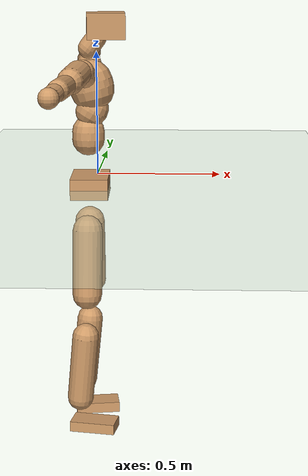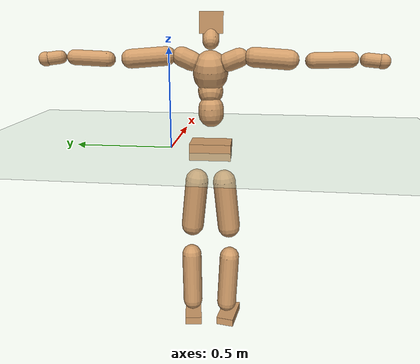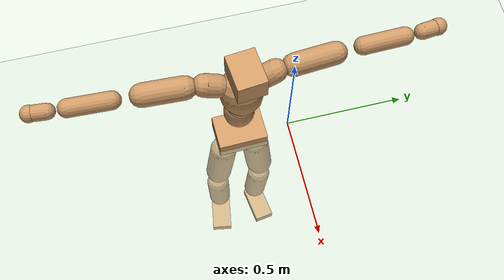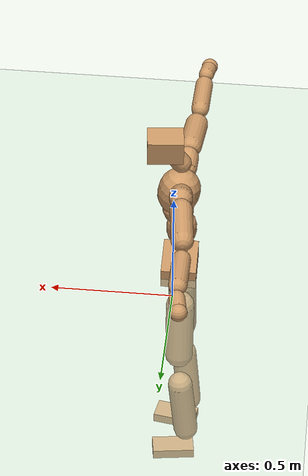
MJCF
<mujoco model="humanoid">
  <compiler coordinate="local" angle="radian"/>
  <default>
    <joint damping="0.0" armature="0.01" stiffness="0.0" limited="true"/>
    <geom conaffinity="1" condim="3" contype="7" margin="0.001" rgba="0.8 0.6 .4 1"/>
  </default>
  <asset>
    <texture type="skybox" builtin="gradient" rgb1=".4 .5 .6" rgb2="0 0 0" width="100" height="100"/>
    <texture builtin="flat" height="1278" mark="cross" markrgb="1 1 1" name="texgeom" random="0.01" rgb1="0.8 0.6 0.4" rgb2="0.8 0.6 0.4" type="cube" width="127"/>
    <texture builtin="checker" height="100" name="texplane" rgb1="0 0 0" rgb2="0.8 0.8 0.8" type="2d" width="100"/>
    <material name="MatPlane" reflectance="0.5" shininess="1" specular="1" texrepeat="60 60" texture="texplane"/>
    <material name="geom" texture="texgeom" texuniform="true"/>
  </asset>
  <worldbody>
    <light cutoff="100" diffuse="1 1 1" dir="-0 0 -1.3" directional="true" exponent="1" pos="0 0 1.3" specular=".1 .1 .1"/>
    <geom conaffinity="1" condim="3" name="floor" pos="0 0 0" rgba="0.8 0.9 0.8 1" size="100 100 .2" type="plane" material="MatPlane"/>
    <body name="Pelvis" pos="-0.0041 -0.2081 0.0128">
      <freejoint name="Pelvis"/>
      <geom type="box" contype="1" conaffinity="1" density="500" pos="-0.0076 -0.0002 -0.0132" size="0.0728 0.1033 0.0408" quat="0.9999 0.0000 0.0000 0.0129" name="Pelvis"/>
      <body name="L_Hip" pos="-0.0187 0.0636 -0.0948">
        <joint name="L_Hip_x" type="hinge" pos="0 0 0" axis="1 0 0" stiffness="800" damping="80" armature="0.02" range="-180.0000 180.0000"/>
        <joint name="L_Hip_y" type="hinge" pos="0 0 0" axis="0 1 0" stiffness="800" damping="80" armature="0.02" range="-180.0000 180.0000"/>
        <joint name="L_Hip_z" type="hinge" pos="0 0 0" axis="0 0 1" stiffness="800" damping="80" armature="0.02" range="-180.0000 180.0000"/>
        <geom type="capsule" contype="1" conaffinity="1" density="500" fromto="0.0000 0.0082 -0.0841 0.0001 0.0329 -0.3363" size="0.059" name="L_Hip"/>
        <body name="L_Knee" pos="0.0002 0.0412 -0.4204">
          <joint name="L_Knee_x" type="hinge" pos="0 0 0" axis="1 0 0" stiffness="800" damping="80" armature="0.02" range="-180.0000 180.0000"/>
          <joint name="L_Knee_y" type="hinge" pos="0 0 0" axis="0 1 0" stiffness="800" damping="80" armature="0.02" range="-180.0000 180.0000"/>
          <joint name="L_Knee_z" type="hinge" pos="0 0 0" axis="0 0 1" stiffness="800" damping="80" armature="0.02" range="-180.0000 180.0000"/>
          <geom type="capsule" contype="1" conaffinity="1" density="500" fromto="-0.0091 -0.0028 -0.0892 -0.0363 -0.0111 -0.3570" size="0.0522" name="L_Knee"/>
          <body name="L_Ankle" pos="-0.0453 -0.0139 -0.4462">
            <joint name="L_Ankle_x" type="hinge" pos="0 0 0" axis="1 0 0" stiffness="800" damping="80" armature="0.02" range="-180.0000 180.0000"/>
            <joint name="L_Ankle_y" type="hinge" pos="0 0 0" axis="0 1 0" stiffness="800" damping="80" armature="0.02" range="-180.0000 180.0000"/>
            <joint name="L_Ankle_z" type="hinge" pos="0 0 0" axis="0 0 1" stiffness="800" damping="80" armature="0.02" range="-180.0000 180.0000"/>
            <geom type="box" contype="1" conaffinity="1" density="500" pos="0.0624 0.0094 -0.0303" size="0.0889 0.0445 0.0216" quat="0.9972 0.0000 0.0000 0.0746" name="L_Ankle"/>
            <body name="L_Toe" pos="0.1249 0.0188 -0.0607">
              <joint name="L_Toe_x" type="hinge" pos="0 0 0" axis="1 0 0" stiffness="500" damping="50" armature="0.02" range="-180.0000 180.0000"/>
              <joint name="L_Toe_y" type="hinge" pos="0 0 0" axis="0 1 0" stiffness="500" damping="50" armature="0.02" range="-180.0000 180.0000"/>
              <joint name="L_Toe_z" type="hinge" pos="0 0 0" axis="0 0 1" stiffness="500" damping="50" armature="0.02" range="-180.0000 180.0000"/>
              <geom type="box" contype="1" conaffinity="1" density="500" pos="0.0000 0.0000 0.0294" size="0.0009 0.0022 0.001" quat="0.9967 0.0000 0.0000 0.0811" name="L_Toe"/>
            </body>
          </body>
        </body>
      </body>
      <body name="R_Hip" pos="-0.014 -0.0609 -0.0939">
        <joint name="R_Hip_x" type="hinge" pos="0 0 0" axis="1 0 0" stiffness="800" damping="80" armature="0.02" range="-180.0000 180.0000"/>
        <joint name="R_Hip_y" type="hinge" pos="0 0 0" axis="0 1 0" stiffness="800" damping="80" armature="0.02" range="-180.0000 180.0000"/>
        <joint name="R_Hip_z" type="hinge" pos="0 0 0" axis="0 0 1" stiffness="800" damping="80" armature="0.02" range="-180.0000 180.0000"/>
        <geom type="capsule" contype="1" conaffinity="1" density="500" fromto="-0.0008 -0.0094 -0.0852 -0.0034 -0.0375 -0.3407" size="0.0581" name="R_Hip"/>
        <body name="R_Knee" pos="-0.0042 -0.0469 -0.4259">
          <joint name="R_Knee_x" type="hinge" pos="0 0 0" axis="1 0 0" stiffness="800" damping="80" armature="0.02" range="-180.0000 180.0000"/>
          <joint name="R_Knee_y" type="hinge" pos="0 0 0" axis="0 1 0" stiffness="800" damping="80" armature="0.02" range="-180.0000 180.0000"/>
          <joint name="R_Knee_z" type="hinge" pos="0 0 0" axis="0 0 1" stiffness="800" damping="80" armature="0.02" range="-180.0000 180.0000"/>
          <geom type="capsule" contype="1" conaffinity="1" density="500" fromto="-0.0085 0.0033 -0.0884 -0.0338 0.0134 -0.3536" size="0.0522" name="R_Knee"/>
          <body name="R_Ankle" pos="-0.0423 0.0167 -0.442">
            <joint name="R_Ankle_x" type="hinge" pos="0 0 0" axis="1 0 0" stiffness="800" damping="80" armature="0.02" range="-180.0000 180.0000"/>
            <joint name="R_Ankle_y" type="hinge" pos="0 0 0" axis="0 1 0" stiffness="800" damping="80" armature="0.02" range="-180.0000 180.0000"/>
            <joint name="R_Ankle_z" type="hinge" pos="0 0 0" axis="0 0 1" stiffness="800" damping="80" armature="0.02" range="-180.0000 180.0000"/>
            <geom type="box" contype="1" conaffinity="1" density="500" pos="0.0638 -0.0105 -0.0256" size="0.0905 0.0468 0.0208" quat="0.9967 0.0000 0.0000 -0.0816" name="R_Ankle"/>
            <body name="R_Toe" pos="0.1276 -0.021 -0.0511">
              <joint name="R_Toe_x" type="hinge" pos="0 0 0" axis="1 0 0" stiffness="500" damping="50" armature="0.02" range="-180.0000 180.0000"/>
              <joint name="R_Toe_y" type="hinge" pos="0 0 0" axis="0 1 0" stiffness="500" damping="50" armature="0.02" range="-180.0000 180.0000"/>
              <joint name="R_Toe_z" type="hinge" pos="0 0 0" axis="0 0 1" stiffness="500" damping="50" armature="0.02" range="-180.0000 180.0000"/>
              <geom type="box" contype="1" conaffinity="1" density="500" pos="0.0000 0.0000 0.0284" size="0.0008 0.0023 0.0012" quat="0.9973 0.0000 0.0000 -0.0729" name="R_Toe"/>
            </body>
          </body>
        </body>
      </body>
      <body name="Torso" pos="-0.0132 -0.0039 0.1095">
        <joint name="Torso_x" type="hinge" pos="0 0 0" axis="1 0 0" stiffness="1000" damping="100" armature="0.02" range="-180.0000 180.0000"/>
        <joint name="Torso_y" type="hinge" pos="0 0 0" axis="0 1 0" stiffness="1000" damping="100" armature="0.02" range="-180.0000 180.0000"/>
        <joint name="Torso_z" type="hinge" pos="0 0 0" axis="0 0 1" stiffness="1000" damping="100" armature="0.02" range="-180.0000 180.0000"/>
        <geom type="capsule" contype="1" conaffinity="1" density="500" fromto="0.0011 0.0033 0.0879 0.0007 0.0022 0.0586" size="0.0628" name="Torso"/>
        <body name="Spine" pos="0.0018 0.0055 0.1465">
          <joint name="Spine_x" type="hinge" pos="0 0 0" axis="1 0 0" stiffness="1000" damping="100" armature="0.02" range="-180.0000 180.0000"/>
          <joint name="Spine_y" type="hinge" pos="0 0 0" axis="0 1 0" stiffness="1000" damping="100" armature="0.02" range="-180.0000 180.0000"/>
          <joint name="Spine_z" type="hinge" pos="0 0 0" axis="0 0 1" stiffness="1000" damping="100" armature="0.02" range="-180.0000 180.0000"/>
          <geom type="capsule" contype="1" conaffinity="1" density="500" fromto="0.0176 0.0020 0.0300 0.0117 0.0014 0.0200" size="0.0618" name="Spine"/>
          <body name="Chest" pos="0.0293 0.0034 0.05">
            <joint name="Chest_x" type="hinge" pos="0 0 0" axis="1 0 0" stiffness="1000" damping="100" armature="0.02" range="-180.0000 180.0000"/>
            <joint name="Chest_y" type="hinge" pos="0 0 0" axis="0 1 0" stiffness="1000" damping="100" armature="0.02" range="-180.0000 180.0000"/>
            <joint name="Chest_z" type="hinge" pos="0 0 0" axis="0 0 1" stiffness="1000" damping="100" armature="0.02" range="-180.0000 180.0000"/>
            <geom type="capsule" contype="1" conaffinity="1" density="500" fromto="-0.0201 -0.0009 0.0841 -0.0134 -0.0006 0.0561" size="0.0856" name="Chest"/>
            <body name="Neck" pos="-0.0358 -0.004 0.1988">
              <joint name="Neck_x" type="hinge" pos="0 0 0" axis="1 0 0" stiffness="500" damping="50" armature="0.02" range="-180.0000 180.0000"/>
              <joint name="Neck_y" type="hinge" pos="0 0 0" axis="0 1 0" stiffness="500" damping="50" armature="0.02" range="-180.0000 180.0000"/>
              <joint name="Neck_z" type="hinge" pos="0 0 0" axis="0 0 1" stiffness="500" damping="50" armature="0.02" range="-180.0000 180.0000"/>
              <geom type="capsule" contype="1" conaffinity="1" density="500" fromto="0.0101 0.0007 0.0128 0.0403 0.0029 0.0512" size="0.0397" name="Neck"/>
              <body name="Head" pos="0.0504 0.0036 0.064">
                <joint name="Head_x" type="hinge" pos="0 0 0" axis="1 0 0" stiffness="500" damping="50" armature="0.02" range="-180.0000 180.0000"/>
                <joint name="Head_y" type="hinge" pos="0 0 0" axis="0 1 0" stiffness="500" damping="50" armature="0.02" range="-180.0000 180.0000"/>
                <joint name="Head_z" type="hinge" pos="0 0 0" axis="0 0 1" stiffness="500" damping="50" armature="0.02" range="-180.0000 180.0000"/>
                <geom type="box" contype="1" conaffinity="1" density="500" pos="0.0262 0.0028 0.0330" size="0.0726 0.0569 0.0498" quat="0.9986 0.0000 0.0000 0.0529" name="Head"/>
              </body>
            </body>
            <body name="L_Thorax" pos="-0.0311 0.0711 0.1117">
              <joint name="L_Thorax_x" type="hinge" pos="0 0 0" axis="1 0 0" stiffness="500" damping="50" armature="0.02" range="-180.0000 180.0000"/>
              <joint name="L_Thorax_y" type="hinge" pos="0 0 0" axis="0 1 0" stiffness="500" damping="50" armature="0.02" range="-180.0000 180.0000"/>
              <joint name="L_Thorax_z" type="hinge" pos="0 0 0" axis="0 0 1" stiffness="500" damping="50" armature="0.02" range="-180.0000 180.0000"/>
              <geom type="capsule" contype="1" conaffinity="1" density="500" fromto="-0.0011 0.0161 0.0071 -0.0042 0.0646 0.0283" size="0.0473" name="L_Thorax"/>
              <body name="L_Shoulder" pos="-0.0053 0.0807 0.0354">
                <joint name="L_Shoulder_x" type="hinge" pos="0 0 0" axis="1 0 0" stiffness="500" damping="50" armature="0.02" range="-720.0000 720.0000"/>
                <joint name="L_Shoulder_y" type="hinge" pos="0 0 0" axis="0 1 0" stiffness="500" damping="50" armature="0.02" range="-720.0000 720.0000"/>
                <joint name="L_Shoulder_z" type="hinge" pos="0 0 0" axis="0 0 1" stiffness="500" damping="50" armature="0.02" range="-720.0000 720.0000"/>
                <geom type="capsule" contype="1" conaffinity="1" density="500" fromto="-0.0067 0.0570 -0.0044 -0.0267 0.2281 -0.0176" size="0.0459" name="L_Shoulder"/>
                <body name="L_Elbow" pos="-0.0334 0.2852 -0.022">
                  <joint name="L_Elbow_x" type="hinge" pos="0 0 0" axis="1 0 0" stiffness="500" damping="50" armature="0.02" range="-720.0000 720.0000"/>
                  <joint name="L_Elbow_y" type="hinge" pos="0 0 0" axis="0 1 0" stiffness="500" damping="50" armature="0.02" range="-720.0000 720.0000"/>
                  <joint name="L_Elbow_z" type="hinge" pos="0 0 0" axis="0 0 1" stiffness="500" damping="50" armature="0.02" range="-720.0000 720.0000"/>
                  <geom type="capsule" contype="1" conaffinity="1" density="500" fromto="-0.0002 0.0549 0.0024 -0.0009 0.2198 0.0096" size="0.0369" name="L_Elbow"/>
                  <body name="L_Wrist" pos="-0.0011 0.2747 0.0121">
                    <joint name="L_Wrist_x" type="hinge" pos="0 0 0" axis="1 0 0" stiffness="300" damping="30" armature="0.02" range="-180.0000 180.0000"/>
                    <joint name="L_Wrist_y" type="hinge" pos="0 0 0" axis="0 1 0" stiffness="300" damping="30" armature="0.02" range="-180.0000 180.0000"/>
                    <joint name="L_Wrist_z" type="hinge" pos="0 0 0" axis="0 0 1" stiffness="300" damping="30" armature="0.02" range="-180.0000 180.0000"/>
                    <geom type="capsule" contype="1" conaffinity="1" density="500" fromto="-0.0030 0.0174 -0.0022 -0.0120 0.0698 -0.0088" size="0.0319" name="L_Wrist"/>
                    <body name="L_Hand" pos="-0.015 0.0872 -0.011">
                      <joint name="L_Hand_x" type="hinge" pos="0 0 0" axis="1 0 0" stiffness="300" damping="30" armature="0.02" range="-180.0000 180.0000"/>
                      <joint name="L_Hand_y" type="hinge" pos="0 0 0" axis="0 1 0" stiffness="300" damping="30" armature="0.02" range="-180.0000 180.0000"/>
                      <joint name="L_Hand_z" type="hinge" pos="0 0 0" axis="0 0 1" stiffness="300" damping="30" armature="0.02" range="-180.0000 180.0000"/>
                      <geom type="sphere" contype="1" conaffinity="1" density="500" size="0.0349" pos="0.0000 0.0000 0.0000" name="L_Hand"/>
                    </body>
                  </body>
                </body>
              </body>
            </body>
            <body name="R_Thorax" pos="-0.0338 -0.0716 0.1101">
              <joint name="R_Thorax_x" type="hinge" pos="0 0 0" axis="1 0 0" stiffness="500" damping="50" armature="0.02" range="-180.0000 180.0000"/>
              <joint name="R_Thorax_y" type="hinge" pos="0 0 0" axis="0 1 0" stiffness="500" damping="50" armature="0.02" range="-180.0000 180.0000"/>
              <joint name="R_Thorax_z" type="hinge" pos="0 0 0" axis="0 0 1" stiffness="500" damping="50" armature="0.02" range="-180.0000 180.0000"/>
              <geom type="capsule" contype="1" conaffinity="1" density="500" fromto="-0.0011 -0.0170 0.0067 -0.0043 -0.0679 0.0268" size="0.046" name="R_Thorax"/>
              <body name="R_Shoulder" pos="-0.0054 -0.0849 0.0335">
                <joint name="R_Shoulder_x" type="hinge" pos="0 0 0" axis="1 0 0" stiffness="500" damping="50" armature="0.02" range="-720.0000 720.0000"/>
                <joint name="R_Shoulder_y" type="hinge" pos="0 0 0" axis="0 1 0" stiffness="500" damping="50" armature="0.02" range="-720.0000 720.0000"/>
                <joint name="R_Shoulder_z" type="hinge" pos="0 0 0" axis="0 0 1" stiffness="500" damping="50" armature="0.02" range="-720.0000 720.0000"/>
                <geom type="capsule" contype="1" conaffinity="1" density="500" fromto="-0.0040 -0.0544 -0.0033 -0.0161 -0.2178 -0.0133" size="0.0472" name="R_Shoulder"/>
                <body name="R_Elbow" pos="-0.0201 -0.2722 -0.0166">
                  <joint name="R_Elbow_x" type="hinge" pos="0 0 0" axis="1 0 0" stiffness="500" damping="50" armature="0.02" range="-720.0000 720.0000"/>
                  <joint name="R_Elbow_y" type="hinge" pos="0 0 0" axis="0 1 0" stiffness="500" damping="50" armature="0.02" range="-720.0000 720.0000"/>
                  <joint name="R_Elbow_z" type="hinge" pos="0 0 0" axis="0 0 1" stiffness="500" damping="50" armature="0.02" range="-720.0000 720.0000"/>
                  <geom type="capsule" contype="1" conaffinity="1" density="500" fromto="-0.0012 -0.0557 0.0018 -0.0047 -0.2229 0.0074" size="0.0368" name="R_Elbow"/>
                  <body name="R_Wrist" pos="-0.0058 -0.2786 0.0092">
                    <joint name="R_Wrist_x" type="hinge" pos="0 0 0" axis="1 0 0" stiffness="300" damping="30" armature="0.02" range="-180.0000 180.0000"/>
                    <joint name="R_Wrist_y" type="hinge" pos="0 0 0" axis="0 1 0" stiffness="300" damping="30" armature="0.02" range="-180.0000 180.0000"/>
                    <joint name="R_Wrist_z" type="hinge" pos="0 0 0" axis="0 0 1" stiffness="300" damping="30" armature="0.02" range="-180.0000 180.0000"/>
                    <geom type="capsule" contype="1" conaffinity="1" density="500" fromto="-0.0022 -0.0172 -0.0015 -0.0090 -0.0688 -0.0062" size="0.032" name="R_Wrist"/>
                    <body name="R_Hand" pos="-0.0112 -0.086 -0.0077">
                      <joint name="R_Hand_x" type="hinge" pos="0 0 0" axis="1 0 0" stiffness="300" damping="30" armature="0.02" range="-180.0000 180.0000"/>
                      <joint name="R_Hand_y" type="hinge" pos="0 0 0" axis="0 1 0" stiffness="300" damping="30" armature="0.02" range="-180.0000 180.0000"/>
                      <joint name="R_Hand_z" type="hinge" pos="0 0 0" axis="0 0 1" stiffness="300" damping="30" armature="0.02" range="-180.0000 180.0000"/>
                      <geom type="sphere" contype="1" conaffinity="1" density="500" size="0.0342" pos="0.0000 0.0000 0.0000" name="R_Hand"/>
                    </body>
                  </body>
                </body>
              </body>
            </body>
          </body>
        </body>
      </body>
    </body>
  </worldbody>
  <actuator>
    <motor name="L_Hip_x" joint="L_Hip_x" gear="500"/>
    <motor name="L_Hip_y" joint="L_Hip_y" gear="500"/>
    <motor name="L_Hip_z" joint="L_Hip_z" gear="500"/>
    <motor name="L_Knee_x" joint="L_Knee_x" gear="500"/>
    <motor name="L_Knee_y" joint="L_Knee_y" gear="500"/>
    <motor name="L_Knee_z" joint="L_Knee_z" gear="500"/>
    <motor name="L_Ankle_x" joint="L_Ankle_x" gear="500"/>
    <motor name="L_Ankle_y" joint="L_Ankle_y" gear="500"/>
    <motor name="L_Ankle_z" joint="L_Ankle_z" gear="500"/>
    <motor name="L_Toe_x" joint="L_Toe_x" gear="500"/>
    <motor name="L_Toe_y" joint="L_Toe_y" gear="500"/>
    <motor name="L_Toe_z" joint="L_Toe_z" gear="500"/>
    <motor name="R_Hip_x" joint="R_Hip_x" gear="500"/>
    <motor name="R_Hip_y" joint="R_Hip_y" gear="500"/>
    <motor name="R_Hip_z" joint="R_Hip_z" gear="500"/>
    <motor name="R_Knee_x" joint="R_Knee_x" gear="500"/>
    <motor name="R_Knee_y" joint="R_Knee_y" gear="500"/>
    <motor name="R_Knee_z" joint="R_Knee_z" gear="500"/>
    <motor name="R_Ankle_x" joint="R_Ankle_x" gear="500"/>
    <motor name="R_Ankle_y" joint="R_Ankle_y" gear="500"/>
    <motor name="R_Ankle_z" joint="R_Ankle_z" gear="500"/>
    <motor name="R_Toe_x" joint="R_Toe_x" gear="500"/>
    <motor name="R_Toe_y" joint="R_Toe_y" gear="500"/>
    <motor name="R_Toe_z" joint="R_Toe_z" gear="500"/>
    <motor name="Torso_x" joint="Torso_x" gear="500"/>
    <motor name="Torso_y" joint="Torso_y" gear="500"/>
    <motor name="Torso_z" joint="Torso_z" gear="500"/>
    <motor name="Spine_x" joint="Spine_x" gear="500"/>
    <motor name="Spine_y" joint="Spine_y" gear="500"/>
    <motor name="Spine_z" joint="Spine_z" gear="500"/>
    <motor name="Chest_x" joint="Chest_x" gear="500"/>
    <motor name="Chest_y" joint="Chest_y" gear="500"/>
    <motor name="Chest_z" joint="Chest_z" gear="500"/>
    <motor name="Neck_x" joint="Neck_x" gear="500"/>
    <motor name="Neck_y" joint="Neck_y" gear="500"/>
    <motor name="Neck_z" joint="Neck_z" gear="500"/>
    <motor name="Head_x" joint="Head_x" gear="500"/>
    <motor name="Head_y" joint="Head_y" gear="500"/>
    <motor name="Head_z" joint="Head_z" gear="500"/>
    <motor name="L_Thorax_x" joint="L_Thorax_x" gear="500"/>
    <motor name="L_Thorax_y" joint="L_Thorax_y" gear="500"/>
    <motor name="L_Thorax_z" joint="L_Thorax_z" gear="500"/>
    <motor name="L_Shoulder_x" joint="L_Shoulder_x" gear="500"/>
    <motor name="L_Shoulder_y" joint="L_Shoulder_y" gear="500"/>
    <motor name="L_Shoulder_z" joint="L_Shoulder_z" gear="500"/>
    <motor name="L_Elbow_x" joint="L_Elbow_x" gear="500"/>
    <motor name="L_Elbow_y" joint="L_Elbow_y" gear="500"/>
    <motor name="L_Elbow_z" joint="L_Elbow_z" gear="500"/>
    <motor name="L_Wrist_x" joint="L_Wrist_x" gear="500"/>
    <motor name="L_Wrist_y" joint="L_Wrist_y" gear="500"/>
    <motor name="L_Wrist_z" joint="L_Wrist_z" gear="500"/>
    <motor name="L_Hand_x" joint="L_Hand_x" gear="500"/>
    <motor name="L_Hand_y" joint="L_Hand_y" gear="500"/>
    <motor name="L_Hand_z" joint="L_Hand_z" gear="500"/>
    <motor name="R_Thorax_x" joint="R_Thorax_x" gear="500"/>
    <motor name="R_Thorax_y" joint="R_Thorax_y" gear="500"/>
    <motor name="R_Thorax_z" joint="R_Thorax_z" gear="500"/>
    <motor name="R_Shoulder_x" joint="R_Shoulder_x" gear="500"/>
    <motor name="R_Shoulder_y" joint="R_Shoulder_y" gear="500"/>
    <motor name="R_Shoulder_z" joint="R_Shoulder_z" gear="500"/>
    <motor name="R_Elbow_x" joint="R_Elbow_x" gear="500"/>
    <motor name="R_Elbow_y" joint="R_Elbow_y" gear="500"/>
    <motor name="R_Elbow_z" joint="R_Elbow_z" gear="500"/>
    <motor name="R_Wrist_x" joint="R_Wrist_x" gear="500"/>
    <motor name="R_Wrist_y" joint="R_Wrist_y" gear="500"/>
    <motor name="R_Wrist_z" joint="R_Wrist_z" gear="500"/>
    <motor name="R_Hand_x" joint="R_Hand_x" gear="500"/>
    <motor name="R_Hand_y" joint="R_Hand_y" gear="500"/>
    <motor name="R_Hand_z" joint="R_Hand_z" gear="500"/>
  </actuator>
  <contact>
    <exclude body1="Torso" body2="Chest"/>
    <exclude body1="Head" body2="Chest"/>
    <exclude body1="R_Knee" body2="R_Toe"/>
    <exclude body1="R_Knee" body2="L_Ankle"/>
    <exclude body1="R_Knee" body2="L_Toe"/>
    <exclude body1="L_Knee" body2="L_Toe"/>
    <exclude body1="L_Knee" body2="R_Ankle"/>
    <exclude body1="L_Knee" body2="R_Toe"/>
    <exclude body1="L_Shoulder" body2="Chest"/>
    <exclude body1="R_Shoulder" body2="Chest"/>
  </contact>
  <sensor/>
  <size njmax="700" nconmax="700"/>
</mujoco>
